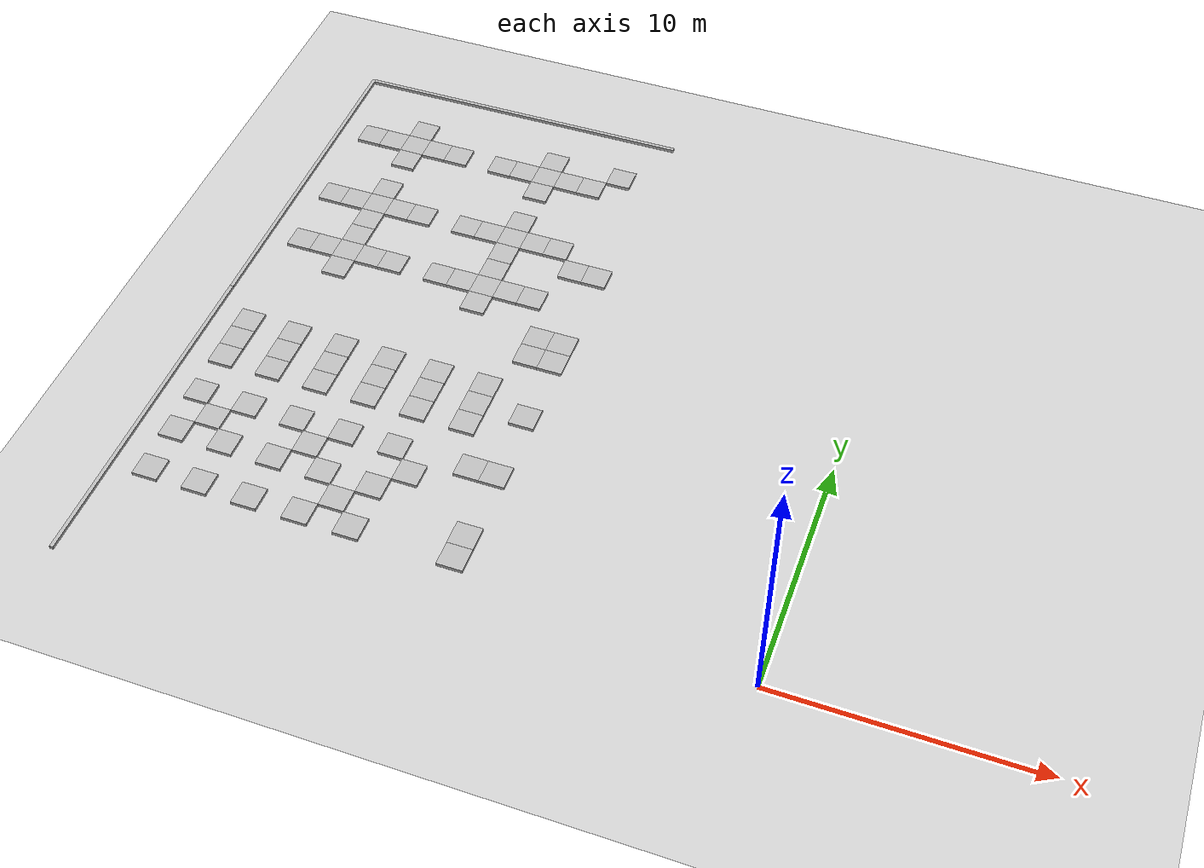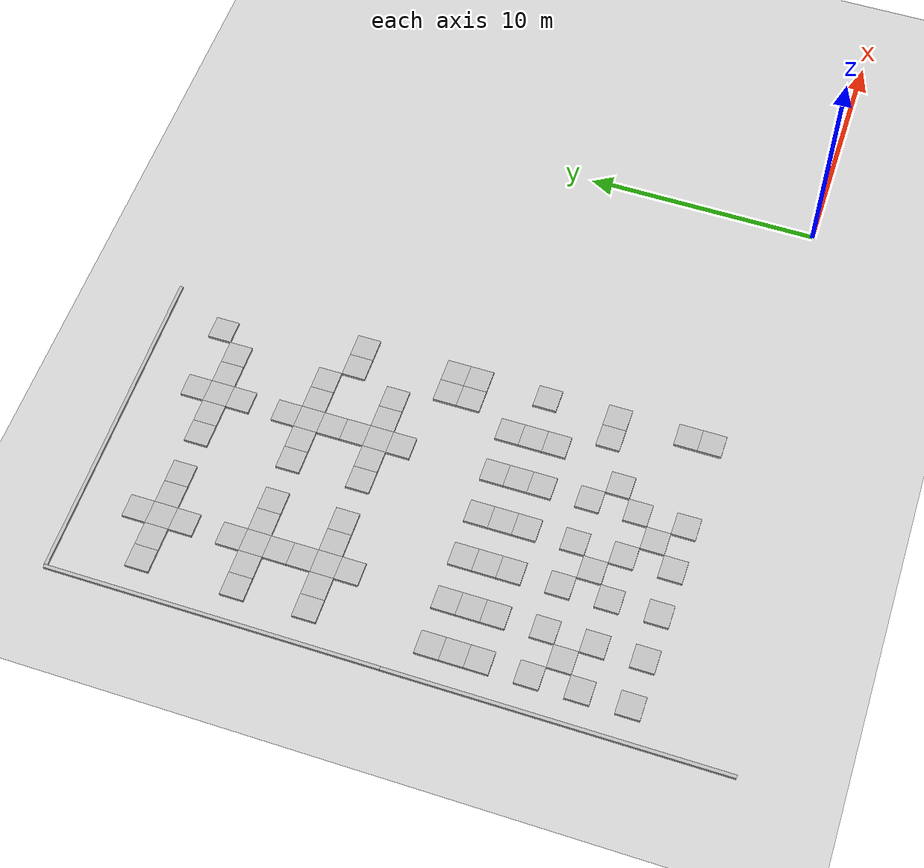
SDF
<sdf version="1.7">
 <world name="default">
  <model name="ground_plane">
   <static>1</static>
   <link name="link">
    <collision name="collision">
     <geometry><plane><normal>0 0 1</normal><size>100 100</size></plane></geometry>
     <surface>
      <contact><collide_bitmask>65535</collide_bitmask></contact>
      <friction><ode><mu>100</mu><mu2>50</mu2></ode></friction>
     </surface>
    </collision>
    <visual name="visual">
     <cast_shadows>0</cast_shadows>
     <geometry><plane><normal>0 0 1</normal><size>100 100</size></plane></geometry>
     <material>
      <script><uri>file://media/materials/scripts/gazebo.material</uri><name>Gazebo/Grey</name></script>
     </material>
    </visual>
   </link>
  </model>
  <model name="concrete_cube_1m_111">
   <static>1</static>
   <link name="link">
    <collision name="concrete_cube_1m">
     <pose>-0 0 0.3 0 -0 0</pose>
     <geometry><box><size>1 1 0.6</size></box></geometry>
    </collision>
    <visual name="concrete_cube_1m_visual">
     <geometry><mesh><uri>model://concrete_cube_1m/meshes/concrete_cube_1m.dae</uri></mesh></geometry>
    </visual>
   </link>
   <pose>-14.5 14.5 0 0 -0 0</pose>
  </model>
  <model name="concrete_cube_1m_112">
   <static>1</static>
   <link name="link">
    <collision name="concrete_cube_1m">
     <pose>-0 0 0.3 0 -0 0</pose>
     <geometry><box><size>1 1 0.6</size></box></geometry>
    </collision>
    <visual name="concrete_cube_1m_visual">
     <geometry><mesh><uri>model://concrete_cube_1m/meshes/concrete_cube_1m.dae</uri></mesh></geometry>
    </visual>
   </link>
   <pose>-13.5 14.5 0 0 -0 0</pose>
  </model>
  <model name="concrete_cube_1m_153">
   <static>1</static>
   <link name="link">
    <collision name="concrete_cube_1m">
     <pose>-0 0 0.3 0 -0 0</pose>
     <geometry><box><size>1 1 0.6</size></box></geometry>
    </collision>
    <visual name="concrete_cube_1m_visual">
     <geometry><mesh><uri>model://concrete_cube_1m/meshes/concrete_cube_1m.dae</uri></mesh></geometry>
    </visual>
   </link>
   <pose>-11.5 1.5 0 0 -0 0</pose>
  </model>
  <model name="concrete_cube_1m_154">
   <static>1</static>
   <link name="link">
    <collision name="concrete_cube_1m">
     <pose>-0 0 0.3 0 -0 0</pose>
     <geometry><box><size>1 1 0.6</size></box></geometry>
    </collision>
    <visual name="concrete_cube_1m_visual">
     <geometry><mesh><uri>model://concrete_cube_1m/meshes/concrete_cube_1m.dae</uri></mesh></geometry>
    </visual>
   </link>
   <pose>-11.5 2.5 0 0 -0 0</pose>
  </model>
  <model name="concrete_cube_1m_155">
   <static>1</static>
   <link name="link">
    <collision name="concrete_cube_1m">
     <pose>-0 0 0.3 0 -0 0</pose>
     <geometry><box><size>1 1 0.6</size></box></geometry>
    </collision>
    <visual name="concrete_cube_1m_visual">
     <geometry><mesh><uri>model://concrete_cube_1m/meshes/concrete_cube_1m.dae</uri></mesh></geometry>
    </visual>
   </link>
   <pose>-11.5 5.5 0 0 -0 0</pose>
  </model>
  <model name="concrete_cube_1m_159">
   <static>1</static>
   <link name="link">
    <collision name="concrete_cube_1m">
     <pose>-0 0 0.3 0 -0 0</pose>
     <geometry><box><size>1 1 0.6</size></box></geometry>
    </collision>
    <visual name="concrete_cube_1m_visual">
     <geometry><mesh><uri>model://concrete_cube_1m/meshes/concrete_cube_1m.dae</uri></mesh></geometry>
    </visual>
   </link>
   <pose>-11.5 8.5 0 0 -0 0</pose>
  </model>
  <model name="concrete_cube_1m_169">
   <static>1</static>
   <link name="link">
    <collision name="concrete_cube_1m">
     <pose>-0 0 0.3 0 -0 0</pose>
     <geometry><box><size>1 1 0.6</size></box></geometry>
    </collision>
    <visual name="concrete_cube_1m_visual">
     <geometry><mesh><uri>model://concrete_cube_1m/meshes/concrete_cube_1m.dae</uri></mesh></geometry>
    </visual>
   </link>
   <pose>-12.5 5.5 0 0 -0 0</pose>
  </model>
  <model name="concrete_cube_1m_170">
   <static>1</static>
   <link name="link">
    <collision name="concrete_cube_1m">
     <pose>-0 0 0.3 0 -0 0</pose>
     <geometry><box><size>1 1 0.6</size></box></geometry>
    </collision>
    <visual name="concrete_cube_1m_visual">
     <geometry><mesh><uri>model://concrete_cube_1m/meshes/concrete_cube_1m.dae</uri></mesh></geometry>
    </visual>
   </link>
   <pose>-11.5 11.5 0 0 -0 0</pose>
  </model>
  <model name="concrete_cube_1m_171">
   <static>1</static>
   <link name="link">
    <collision name="concrete_cube_1m">
     <pose>-0 0 0.3 0 -0 0</pose>
     <geometry><box><size>1 1 0.6</size></box></geometry>
    </collision>
    <visual name="concrete_cube_1m_visual">
     <geometry><mesh><uri>model://concrete_cube_1m/meshes/concrete_cube_1m.dae</uri></mesh></geometry>
    </visual>
   </link>
   <pose>-11.5 12.5 0 0 -0 0</pose>
  </model>
  <model name="concrete_cube_1m_172">
   <static>1</static>
   <link name="link">
    <collision name="concrete_cube_1m">
     <pose>-0 0 0.3 0 -0 0</pose>
     <geometry><box><size>1 1 0.6</size></box></geometry>
    </collision>
    <visual name="concrete_cube_1m_visual">
     <geometry><mesh><uri>model://concrete_cube_1m/meshes/concrete_cube_1m.dae</uri></mesh></geometry>
    </visual>
   </link>
   <pose>-12.5 11.5 0 0 -0 0</pose>
  </model>
  <model name="concrete_cube_1m_173">
   <static>1</static>
   <link name="link">
    <collision name="concrete_cube_1m">
     <pose>-0 0 0.3 0 -0 0</pose>
     <geometry><box><size>1 1 0.6</size></box></geometry>
    </collision>
    <visual name="concrete_cube_1m_visual">
     <geometry><mesh><uri>model://concrete_cube_1m/meshes/concrete_cube_1m.dae</uri></mesh></geometry>
    </visual>
   </link>
   <pose>-12.5 12.5 0 0 -0 0</pose>
  </model>
  <model name="concrete_cube_1m_174">
   <static>1</static>
   <link name="link">
    <collision name="concrete_cube_1m">
     <pose>-0 0 0.3 0 -0 0</pose>
     <geometry><box><size>1 1 0.6</size></box></geometry>
    </collision>
    <visual name="concrete_cube_1m_visual">
     <geometry><mesh><uri>model://concrete_cube_1m/meshes/concrete_cube_1m.dae</uri></mesh></geometry>
    </visual>
   </link>
   <pose>-13.5 7.5 0 0 -0 0</pose>
  </model>
  <model name="concrete_cube_1m_175">
   <static>1</static>
   <link name="link">
    <collision name="concrete_cube_1m">
     <pose>-0 0 0.3 0 -0 0</pose>
     <geometry><box><size>1 1 0.6</size></box></geometry>
    </collision>
    <visual name="concrete_cube_1m_visual">
     <geometry><mesh><uri>model://concrete_cube_1m/meshes/concrete_cube_1m.dae</uri></mesh></geometry>
    </visual>
   </link>
   <pose>-13.5 8.5 0 0 -0 0</pose>
  </model>
  <model name="concrete_cube_1m_176">
   <static>1</static>
   <link name="link">
    <collision name="concrete_cube_1m">
     <pose>-0 0 0.3 0 -0 0</pose>
     <geometry><box><size>1 1 0.6</size></box></geometry>
    </collision>
    <visual name="concrete_cube_1m_visual">
     <geometry><mesh><uri>model://concrete_cube_1m/meshes/concrete_cube_1m.dae</uri></mesh></geometry>
    </visual>
   </link>
   <pose>-13.5 9.5 0 0 -0 0</pose>
  </model>
  <model name="concrete_barrier_14m_8">
   <static>1</static>
   <link name="link">
    <collision name="concrete_barrier_14m_01">
     <pose>-0 0 0.3 0 -0 0</pose>
     <geometry><box><size>14 0.15 0.6</size></box></geometry>
    </collision>
    <visual name="concrete_barrier_14m_visual">
     <geometry><mesh><uri>model://concrete_barrier_14m/meshes/concrete_barrier_14m.dae</uri></mesh></geometry>
    </visual>
   </link>
   <pose>-25 4 0 0 -0 0</pose>
  </model>
  <model name="concrete_barrier_14m_10">
   <static>1</static>
   <link name="link">
    <collision name="concrete_barrier_14m_01">
     <pose>-0 0 0.3 0 -0 0</pose>
     <geometry><box><size>14 0.15 0.6</size></box></geometry>
    </collision>
    <visual name="concrete_barrier_14m_visual">
     <geometry><mesh><uri>model://concrete_barrier_14m/meshes/concrete_barrier_14m.dae</uri></mesh></geometry>
    </visual>
   </link>
   <pose>-25 18 0 0 -0 0</pose>
  </model>
  <model name="concrete_cube_1m_318">
   <static>1</static>
   <link name="link">
    <collision name="concrete_cube_1m">
     <pose>-0 0 0.3 0 -0 0</pose>
     <geometry><box><size>1 1 0.6</size></box></geometry>
    </collision>
    <visual name="concrete_cube_1m_visual">
     <geometry><mesh><uri>model://concrete_cube_1m/meshes/concrete_cube_1m.dae</uri></mesh></geometry>
    </visual>
   </link>
   <pose>-11.5 16.5 0 0 -0 0</pose>
  </model>
  <model name="concrete_cube_1m_319">
   <static>1</static>
   <link name="link">
    <collision name="concrete_cube_1m">
     <pose>-0 0 0.3 0 -0 0</pose>
     <geometry><box><size>1 1 0.6</size></box></geometry>
    </collision>
    <visual name="concrete_cube_1m_visual">
     <geometry><mesh><uri>model://concrete_cube_1m/meshes/concrete_cube_1m.dae</uri></mesh></geometry>
    </visual>
   </link>
   <pose>-12.5 16.5 0 0 -0 0</pose>
  </model>
  <model name="concrete_cube_1m_320">
   <static>1</static>
   <link name="link">
    <collision name="concrete_cube_1m">
     <pose>-0 0 0.3 0 -0 0</pose>
     <geometry><box><size>1 1 0.6</size></box></geometry>
    </collision>
    <visual name="concrete_cube_1m_visual">
     <geometry><mesh><uri>model://concrete_cube_1m/meshes/concrete_cube_1m.dae</uri></mesh></geometry>
    </visual>
   </link>
   <pose>-15.5 7.5 0 0 -0 0</pose>
  </model>
  <model name="concrete_cube_1m_321">
   <static>1</static>
   <link name="link">
    <collision name="concrete_cube_1m">
     <pose>-0 0 0.3 0 -0 0</pose>
     <geometry><box><size>1 1 0.6</size></box></geometry>
    </collision>
    <visual name="concrete_cube_1m_visual">
     <geometry><mesh><uri>model://concrete_cube_1m/meshes/concrete_cube_1m.dae</uri></mesh></geometry>
    </visual>
   </link>
   <pose>-15.5 8.5 0 0 -0 0</pose>
  </model>
  <model name="concrete_cube_1m_322">
   <static>1</static>
   <link name="link">
    <collision name="concrete_cube_1m">
     <pose>-0 0 0.3 0 -0 0</pose>
     <geometry><box><size>1 1 0.6</size></box></geometry>
    </collision>
    <visual name="concrete_cube_1m_visual">
     <geometry><mesh><uri>model://concrete_cube_1m/meshes/concrete_cube_1m.dae</uri></mesh></geometry>
    </visual>
   </link>
   <pose>-15.5 9.5 0 0 -0 0</pose>
  </model>
  <model name="concrete_cube_1m_323">
   <static>1</static>
   <link name="link">
    <collision name="concrete_cube_1m">
     <pose>-0 0 0.3 0 -0 0</pose>
     <geometry><box><size>1 1 0.6</size></box></geometry>
    </collision>
    <visual name="concrete_cube_1m_visual">
     <geometry><mesh><uri>model://concrete_cube_1m/meshes/concrete_cube_1m.dae</uri></mesh></geometry>
    </visual>
   </link>
   <pose>-17.5 7.5 0 0 -0 0</pose>
  </model>
  <model name="concrete_cube_1m_324">
   <static>1</static>
   <link name="link">
    <collision name="concrete_cube_1m">
     <pose>-0 0 0.3 0 -0 0</pose>
     <geometry><box><size>1 1 0.6</size></box></geometry>
    </collision>
    <visual name="concrete_cube_1m_visual">
     <geometry><mesh><uri>model://concrete_cube_1m/meshes/concrete_cube_1m.dae</uri></mesh></geometry>
    </visual>
   </link>
   <pose>-17.5 8.5 0 0 -0 0</pose>
  </model>
  <model name="concrete_cube_1m_325">
   <static>1</static>
   <link name="link">
    <collision name="concrete_cube_1m">
     <pose>-0 0 0.3 0 -0 0</pose>
     <geometry><box><size>1 1 0.6</size></box></geometry>
    </collision>
    <visual name="concrete_cube_1m_visual">
     <geometry><mesh><uri>model://concrete_cube_1m/meshes/concrete_cube_1m.dae</uri></mesh></geometry>
    </visual>
   </link>
   <pose>-17.5 9.5 0 0 -0 0</pose>
  </model>
  <model name="concrete_cube_1m_326">
   <static>1</static>
   <link name="link">
    <collision name="concrete_cube_1m">
     <pose>-0 0 0.3 0 -0 0</pose>
     <geometry><box><size>1 1 0.6</size></box></geometry>
    </collision>
    <visual name="concrete_cube_1m_visual">
     <geometry><mesh><uri>model://concrete_cube_1m/meshes/concrete_cube_1m.dae</uri></mesh></geometry>
    </visual>
   </link>
   <pose>-15.5 14.5 0 0 -0 0</pose>
  </model>
  <model name="concrete_cube_1m_327">
   <static>1</static>
   <link name="link">
    <collision name="concrete_cube_1m">
     <pose>-0 0 0.3 0 -0 0</pose>
     <geometry><box><size>1 1 0.6</size></box></geometry>
    </collision>
    <visual name="concrete_cube_1m_visual">
     <geometry><mesh><uri>model://concrete_cube_1m/meshes/concrete_cube_1m.dae</uri></mesh></geometry>
    </visual>
   </link>
   <pose>-16.5 14.5 0 0 -0 0</pose>
  </model>
  <model name="concrete_cube_1m_328">
   <static>1</static>
   <link name="link">
    <collision name="concrete_cube_1m">
     <pose>-0 0 0.3 0 -0 0</pose>
     <geometry><box><size>1 1 0.6</size></box></geometry>
    </collision>
    <visual name="concrete_cube_1m_visual">
     <geometry><mesh><uri>model://concrete_cube_1m/meshes/concrete_cube_1m.dae</uri></mesh></geometry>
    </visual>
   </link>
   <pose>-17.5 14.5 0 0 -0 0</pose>
  </model>
  <model name="concrete_cube_1m_329">
   <static>1</static>
   <link name="link">
    <collision name="concrete_cube_1m">
     <pose>-0 0 0.3 0 -0 0</pose>
     <geometry><box><size>1 1 0.6</size></box></geometry>
    </collision>
    <visual name="concrete_cube_1m_visual">
     <geometry><mesh><uri>model://concrete_cube_1m/meshes/concrete_cube_1m.dae</uri></mesh></geometry>
    </visual>
   </link>
   <pose>-13.5 17.5 0 0 -0 0</pose>
  </model>
  <model name="concrete_cube_1m_330">
   <static>1</static>
   <link name="link">
    <collision name="concrete_cube_1m">
     <pose>-0 0 0.3 0 -0 0</pose>
     <geometry><box><size>1 1 0.6</size></box></geometry>
    </collision>
    <visual name="concrete_cube_1m_visual">
     <geometry><mesh><uri>model://concrete_cube_1m/meshes/concrete_cube_1m.dae</uri></mesh></geometry>
    </visual>
   </link>
   <pose>-14.5 17.5 0 0 -0 0</pose>
  </model>
  <model name="concrete_cube_1m_331">
   <static>1</static>
   <link name="link">
    <collision name="concrete_cube_1m">
     <pose>-0 0 0.3 0 -0 0</pose>
     <geometry><box><size>1 1 0.6</size></box></geometry>
    </collision>
    <visual name="concrete_cube_1m_visual">
     <geometry><mesh><uri>model://concrete_cube_1m/meshes/concrete_cube_1m.dae</uri></mesh></geometry>
    </visual>
   </link>
   <pose>-15.5 17.5 0 0 -0 0</pose>
  </model>
  <model name="concrete_cube_1m_332">
   <static>1</static>
   <link name="link">
    <collision name="concrete_cube_1m">
     <pose>-0 0 0.3 0 -0 0</pose>
     <geometry><box><size>1 1 0.6</size></box></geometry>
    </collision>
    <visual name="concrete_cube_1m_visual">
     <geometry><mesh><uri>model://concrete_cube_1m/meshes/concrete_cube_1m.dae</uri></mesh></geometry>
    </visual>
   </link>
   <pose>-16.5 17.5 0 0 -0 0</pose>
  </model>
  <model name="concrete_cube_1m_333">
   <static>1</static>
   <link name="link">
    <collision name="concrete_cube_1m">
     <pose>-0 0 0.3 0 -0 0</pose>
     <geometry><box><size>1 1 0.6</size></box></geometry>
    </collision>
    <visual name="concrete_cube_1m_visual">
     <geometry><mesh><uri>model://concrete_cube_1m/meshes/concrete_cube_1m.dae</uri></mesh></geometry>
    </visual>
   </link>
   <pose>-17.5 17.5 0 0 -0 0</pose>
  </model>
  <model name="concrete_cube_1m_334">
   <static>1</static>
   <link name="link">
    <collision name="concrete_cube_1m">
     <pose>-0 0 0.3 0 -0 0</pose>
     <geometry><box><size>1 1 0.6</size></box></geometry>
    </collision>
    <visual name="concrete_cube_1m_visual">
     <geometry><mesh><uri>model://concrete_cube_1m/meshes/concrete_cube_1m.dae</uri></mesh></geometry>
    </visual>
   </link>
   <pose>-15.5 15.5 0 0 -0 0</pose>
  </model>
  <model name="concrete_cube_1m_335">
   <static>1</static>
   <link name="link">
    <collision name="concrete_cube_1m">
     <pose>-0 0 0.3 0 -0 0</pose>
     <geometry><box><size>1 1 0.6</size></box></geometry>
    </collision>
    <visual name="concrete_cube_1m_visual">
     <geometry><mesh><uri>model://concrete_cube_1m/meshes/concrete_cube_1m.dae</uri></mesh></geometry>
    </visual>
   </link>
   <pose>-15.5 16.5 0 0 -0 0</pose>
  </model>
  <model name="concrete_cube_1m_336">
   <static>1</static>
   <link name="link">
    <collision name="concrete_cube_1m">
     <pose>-0 0 0.3 0 -0 0</pose>
     <geometry><box><size>1 1 0.6</size></box></geometry>
    </collision>
    <visual name="concrete_cube_1m_visual">
     <geometry><mesh><uri>model://concrete_cube_1m/meshes/concrete_cube_1m.dae</uri></mesh></geometry>
    </visual>
   </link>
   <pose>-15.5 18.5 0 0 -0 0</pose>
  </model>
  <model name="concrete_cube_1m_337">
   <static>1</static>
   <link name="link">
    <collision name="concrete_cube_1m">
     <pose>-0 0 0.3 0 -0 0</pose>
     <geometry><box><size>1 1 0.6</size></box></geometry>
    </collision>
    <visual name="concrete_cube_1m_visual">
     <geometry><mesh><uri>model://concrete_cube_1m/meshes/concrete_cube_1m.dae</uri></mesh></geometry>
    </visual>
   </link>
   <pose>-15.5 13.5 0 0 -0 0</pose>
  </model>
  <model name="concrete_cube_1m_338">
   <static>1</static>
   <link name="link">
    <collision name="concrete_cube_1m">
     <pose>-0 0 0.3 0 -0 0</pose>
     <geometry><box><size>1 1 0.6</size></box></geometry>
    </collision>
    <visual name="concrete_cube_1m_visual">
     <geometry><mesh><uri>model://concrete_cube_1m/meshes/concrete_cube_1m.dae</uri></mesh></geometry>
    </visual>
   </link>
   <pose>-15.5 1.5 0 0 -0 0</pose>
  </model>
  <model name="concrete_cube_1m_339">
   <static>1</static>
   <link name="link">
    <collision name="concrete_cube_1m">
     <pose>-0 0 0.3 0 -0 0</pose>
     <geometry><box><size>1 1 0.6</size></box></geometry>
    </collision>
    <visual name="concrete_cube_1m_visual">
     <geometry><mesh><uri>model://concrete_cube_1m/meshes/concrete_cube_1m.dae</uri></mesh></geometry>
    </visual>
   </link>
   <pose>-16.5 2.5 0 0 -0 0</pose>
  </model>
  <model name="concrete_cube_1m_340">
   <static>1</static>
   <link name="link">
    <collision name="concrete_cube_1m">
     <pose>-0 0 0.3 0 -0 0</pose>
     <geometry><box><size>1 1 0.6</size></box></geometry>
    </collision>
    <visual name="concrete_cube_1m_visual">
     <geometry><mesh><uri>model://concrete_cube_1m/meshes/concrete_cube_1m.dae</uri></mesh></geometry>
    </visual>
   </link>
   <pose>-17.5 3.5 0 0 -0 0</pose>
  </model>
  <model name="concrete_cube_1m_341">
   <static>1</static>
   <link name="link">
    <collision name="concrete_cube_1m">
     <pose>-0 0 0.3 0 -0 0</pose>
     <geometry><box><size>1 1 0.6</size></box></geometry>
    </collision>
    <visual name="concrete_cube_1m_visual">
     <geometry><mesh><uri>model://concrete_cube_1m/meshes/concrete_cube_1m.dae</uri></mesh></geometry>
    </visual>
   </link>
   <pose>-18.5 4.5 0 0 -0 0</pose>
  </model>
  <model name="concrete_cube_1m_342">
   <static>1</static>
   <link name="link">
    <collision name="concrete_cube_1m">
     <pose>-0 0 0.3 0 -0 0</pose>
     <geometry><box><size>1 1 0.6</size></box></geometry>
    </collision>
    <visual name="concrete_cube_1m_visual">
     <geometry><mesh><uri>model://concrete_cube_1m/meshes/concrete_cube_1m.dae</uri></mesh></geometry>
    </visual>
   </link>
   <pose>-15.5 3.5 0 0 -0 0</pose>
  </model>
  <model name="concrete_cube_1m_343">
   <static>1</static>
   <link name="link">
    <collision name="concrete_cube_1m">
     <pose>-0 0 0.3 0 -0 0</pose>
     <geometry><box><size>1 1 0.6</size></box></geometry>
    </collision>
    <visual name="concrete_cube_1m_visual">
     <geometry><mesh><uri>model://concrete_cube_1m/meshes/concrete_cube_1m.dae</uri></mesh></geometry>
    </visual>
   </link>
   <pose>-14.5 4.5 0 0 -0 0</pose>
  </model>
  <model name="concrete_cube_1m_344">
   <static>1</static>
   <link name="link">
    <collision name="concrete_cube_1m">
     <pose>-0 0 0.3 0 -0 0</pose>
     <geometry><box><size>1 1 0.6</size></box></geometry>
    </collision>
    <visual name="concrete_cube_1m_visual">
     <geometry><mesh><uri>model://concrete_cube_1m/meshes/concrete_cube_1m.dae</uri></mesh></geometry>
    </visual>
   </link>
   <pose>-17.5 1.5 0 0 -0 0</pose>
  </model>
  <model name="concrete_cube_1m_346">
   <static>1</static>
   <link name="link">
    <collision name="concrete_cube_1m">
     <pose>-0 0 0.3 0 -0 0</pose>
     <geometry><box><size>1 1 0.6</size></box></geometry>
    </collision>
    <visual name="concrete_cube_1m_visual">
     <geometry><mesh><uri>model://concrete_cube_1m/meshes/concrete_cube_1m.dae</uri></mesh></geometry>
    </visual>
   </link>
   <pose>-19.5 7.5 0 0 -0 0</pose>
  </model>
  <model name="concrete_cube_1m_347">
   <static>1</static>
   <link name="link">
    <collision name="concrete_cube_1m">
     <pose>-0 0 0.3 0 -0 0</pose>
     <geometry><box><size>1 1 0.6</size></box></geometry>
    </collision>
    <visual name="concrete_cube_1m_visual">
     <geometry><mesh><uri>model://concrete_cube_1m/meshes/concrete_cube_1m.dae</uri></mesh></geometry>
    </visual>
   </link>
   <pose>-19.5 8.5 0 0 -0 0</pose>
  </model>
  <model name="concrete_cube_1m_348">
   <static>1</static>
   <link name="link">
    <collision name="concrete_cube_1m">
     <pose>-0 0 0.3 0 -0 0</pose>
     <geometry><box><size>1 1 0.6</size></box></geometry>
    </collision>
    <visual name="concrete_cube_1m_visual">
     <geometry><mesh><uri>model://concrete_cube_1m/meshes/concrete_cube_1m.dae</uri></mesh></geometry>
    </visual>
   </link>
   <pose>-19.5 9.5 0 0 -0 0</pose>
  </model>
  <model name="concrete_cube_1m_376">
   <static>1</static>
   <link name="link">
    <collision name="concrete_cube_1m">
     <pose>-0 0 0.3 0 -0 0</pose>
     <geometry><box><size>1 1 0.6</size></box></geometry>
    </collision>
    <visual name="concrete_cube_1m_visual">
     <geometry><mesh><uri>model://concrete_cube_1m/meshes/concrete_cube_1m.dae</uri></mesh></geometry>
    </visual>
   </link>
   <pose>-15.5 5.5 0 0 -0 0</pose>
  </model>
  <model name="concrete_cube_1m_377">
   <static>1</static>
   <link name="link">
    <collision name="concrete_cube_1m">
     <pose>-0 0 0.3 0 -0 0</pose>
     <geometry><box><size>1 1 0.6</size></box></geometry>
    </collision>
    <visual name="concrete_cube_1m_visual">
     <geometry><mesh><uri>model://concrete_cube_1m/meshes/concrete_cube_1m.dae</uri></mesh></geometry>
    </visual>
   </link>
   <pose>-17.5 5.5 0 0 -0 0</pose>
  </model>
  <model name="concrete_barrier_14m_2_clone">
   <static>1</static>
   <link name="link">
    <collision name="concrete_barrier_14m_01">
     <pose>-0 0 0.3 0 -0 0</pose>
     <geometry><box><size>14 0.15 0.6</size></box></geometry>
    </collision>
    <visual name="concrete_barrier_14m_visual">
     <geometry><mesh><uri>model://concrete_barrier_14m/meshes/concrete_barrier_14m.dae</uri></mesh></geometry>
    </visual>
   </link>
   <pose>-18 25 0 0 -0 1.57802</pose>
  </model>
  <model name="concrete_cube_1m_478">
   <static>1</static>
   <link name="link">
    <collision name="concrete_cube_1m">
     <pose>-0 0 0.3 0 -0 0</pose>
     <geometry><box><size>1 1 0.6</size></box></geometry>
    </collision>
    <visual name="concrete_cube_1m_visual">
     <geometry><mesh><uri>model://concrete_cube_1m/meshes/concrete_cube_1m.dae</uri></mesh></geometry>
    </visual>
   </link>
   <pose>-21.5 8.5 0 0 -0 0</pose>
  </model>
  <model name="concrete_cube_1m_479">
   <static>1</static>
   <link name="link">
    <collision name="concrete_cube_1m">
     <pose>-0 0 0.3 0 -0 0</pose>
     <geometry><box><size>1 1 0.6</size></box></geometry>
    </collision>
    <visual name="concrete_cube_1m_visual">
     <geometry><mesh><uri>model://concrete_cube_1m/meshes/concrete_cube_1m.dae</uri></mesh></geometry>
    </visual>
   </link>
   <pose>-21.5 7.5 0 0 -0 0</pose>
  </model>
  <model name="concrete_cube_1m_480">
   <static>1</static>
   <link name="link">
    <collision name="concrete_cube_1m">
     <pose>-0 0 0.3 0 -0 0</pose>
     <geometry><box><size>1 1 0.6</size></box></geometry>
    </collision>
    <visual name="concrete_cube_1m_visual">
     <geometry><mesh><uri>model://concrete_cube_1m/meshes/concrete_cube_1m.dae</uri></mesh></geometry>
    </visual>
   </link>
   <pose>-21.5 9.5 0 0 -0 0</pose>
  </model>
  <model name="concrete_cube_1m_481">
   <static>1</static>
   <link name="link">
    <collision name="concrete_cube_1m">
     <pose>-0 0 0.3 0 -0 0</pose>
     <geometry><box><size>1 1 0.6</size></box></geometry>
    </collision>
    <visual name="concrete_cube_1m_visual">
     <geometry><mesh><uri>model://concrete_cube_1m/meshes/concrete_cube_1m.dae</uri></mesh></geometry>
    </visual>
   </link>
   <pose>-23.5 7.5 0 0 -0 0</pose>
  </model>
  <model name="concrete_cube_1m_482">
   <static>1</static>
   <link name="link">
    <collision name="concrete_cube_1m">
     <pose>-0 0 0.3 0 -0 0</pose>
     <geometry><box><size>1 1 0.6</size></box></geometry>
    </collision>
    <visual name="concrete_cube_1m_visual">
     <geometry><mesh><uri>model://concrete_cube_1m/meshes/concrete_cube_1m.dae</uri></mesh></geometry>
    </visual>
   </link>
   <pose>-23.5 8.5 0 0 -0 0</pose>
  </model>
  <model name="concrete_cube_1m_483">
   <static>1</static>
   <link name="link">
    <collision name="concrete_cube_1m">
     <pose>-0 0 0.3 0 -0 0</pose>
     <geometry><box><size>1 1 0.6</size></box></geometry>
    </collision>
    <visual name="concrete_cube_1m_visual">
     <geometry><mesh><uri>model://concrete_cube_1m/meshes/concrete_cube_1m.dae</uri></mesh></geometry>
    </visual>
   </link>
   <pose>-23.5 9.5 0 0 -0 0</pose>
  </model>
  <model name="concrete_cube_1m_484">
   <static>1</static>
   <link name="link">
    <collision name="concrete_cube_1m">
     <pose>-0 0 0.3 0 -0 0</pose>
     <geometry><box><size>1 1 0.6</size></box></geometry>
    </collision>
    <visual name="concrete_cube_1m_visual">
     <geometry><mesh><uri>model://concrete_cube_1m/meshes/concrete_cube_1m.dae</uri></mesh></geometry>
    </visual>
   </link>
   <pose>-19.5 5.5 0 0 -0 0</pose>
  </model>
  <model name="concrete_cube_1m_485">
   <static>1</static>
   <link name="link">
    <collision name="concrete_cube_1m">
     <pose>-0 0 0.3 0 -0 0</pose>
     <geometry><box><size>1 1 0.6</size></box></geometry>
    </collision>
    <visual name="concrete_cube_1m_visual">
     <geometry><mesh><uri>model://concrete_cube_1m/meshes/concrete_cube_1m.dae</uri></mesh></geometry>
    </visual>
   </link>
   <pose>-19.5 3.5 0 0 -0 0</pose>
  </model>
  <model name="concrete_cube_1m_486">
   <static>1</static>
   <link name="link">
    <collision name="concrete_cube_1m">
     <pose>-0 0 0.3 0 -0 0</pose>
     <geometry><box><size>1 1 0.6</size></box></geometry>
    </collision>
    <visual name="concrete_cube_1m_visual">
     <geometry><mesh><uri>model://concrete_cube_1m/meshes/concrete_cube_1m.dae</uri></mesh></geometry>
    </visual>
   </link>
   <pose>-21.5 5.5 0 0 -0 0</pose>
  </model>
  <model name="concrete_cube_1m_487">
   <static>1</static>
   <link name="link">
    <collision name="concrete_cube_1m">
     <pose>-0 0 0.3 0 -0 0</pose>
     <geometry><box><size>1 1 0.6</size></box></geometry>
    </collision>
    <visual name="concrete_cube_1m_visual">
     <geometry><mesh><uri>model://concrete_cube_1m/meshes/concrete_cube_1m.dae</uri></mesh></geometry>
    </visual>
   </link>
   <pose>-22.5 4.5 0 0 -0 0</pose>
  </model>
  <model name="concrete_cube_1m_488">
   <static>1</static>
   <link name="link">
    <collision name="concrete_cube_1m">
     <pose>-0 0 0.3 0 -0 0</pose>
     <geometry><box><size>1 1 0.6</size></box></geometry>
    </collision>
    <visual name="concrete_cube_1m_visual">
     <geometry><mesh><uri>model://concrete_cube_1m/meshes/concrete_cube_1m.dae</uri></mesh></geometry>
    </visual>
   </link>
   <pose>-21.5 3.5 0 0 -0 0</pose>
  </model>
  <model name="concrete_cube_1m_489">
   <static>1</static>
   <link name="link">
    <collision name="concrete_cube_1m">
     <pose>-0 0 0.3 0 -0 0</pose>
     <geometry><box><size>1 1 0.6</size></box></geometry>
    </collision>
    <visual name="concrete_cube_1m_visual">
     <geometry><mesh><uri>model://concrete_cube_1m/meshes/concrete_cube_1m.dae</uri></mesh></geometry>
    </visual>
   </link>
   <pose>-23.5 5.5 0 0 -0 0</pose>
  </model>
  <model name="concrete_cube_1m_490">
   <static>1</static>
   <link name="link">
    <collision name="concrete_cube_1m">
     <pose>-0 0 0.3 0 -0 0</pose>
     <geometry><box><size>1 1 0.6</size></box></geometry>
    </collision>
    <visual name="concrete_cube_1m_visual">
     <geometry><mesh><uri>model://concrete_cube_1m/meshes/concrete_cube_1m.dae</uri></mesh></geometry>
    </visual>
   </link>
   <pose>-23.5 3.5 0 0 -0 0</pose>
  </model>
  <model name="concrete_cube_1m_491">
   <static>1</static>
   <link name="link">
    <collision name="concrete_cube_1m">
     <pose>-0 0 0.3 0 -0 0</pose>
     <geometry><box><size>1 1 0.6</size></box></geometry>
    </collision>
    <visual name="concrete_cube_1m_visual">
     <geometry><mesh><uri>model://concrete_cube_1m/meshes/concrete_cube_1m.dae</uri></mesh></geometry>
    </visual>
   </link>
   <pose>-19.5 1.5 0 0 -0 0</pose>
  </model>
  <model name="concrete_cube_1m_493">
   <static>1</static>
   <link name="link">
    <collision name="concrete_cube_1m">
     <pose>-0 0 0.3 0 -0 0</pose>
     <geometry><box><size>1 1 0.6</size></box></geometry>
    </collision>
    <visual name="concrete_cube_1m_visual">
     <geometry><mesh><uri>model://concrete_cube_1m/meshes/concrete_cube_1m.dae</uri></mesh></geometry>
    </visual>
   </link>
   <pose>-21.5 1.5 0 0 -0 0</pose>
  </model>
  <model name="concrete_cube_1m_497">
   <static>1</static>
   <link name="link">
    <collision name="concrete_cube_1m">
     <pose>-0 0 0.3 0 -0 0</pose>
     <geometry><box><size>1 1 0.6</size></box></geometry>
    </collision>
    <visual name="concrete_cube_1m_visual">
     <geometry><mesh><uri>model://concrete_cube_1m/meshes/concrete_cube_1m.dae</uri></mesh></geometry>
    </visual>
   </link>
   <pose>-23.5 1.5 0 0 -0 0</pose>
  </model>
  <model name="concrete_cube_1m_551">
   <static>1</static>
   <link name="link">
    <collision name="concrete_cube_1m">
     <pose>-0 0 0.3 0 -0 0</pose>
     <geometry><box><size>1 1 0.6</size></box></geometry>
    </collision>
    <visual name="concrete_cube_1m_visual">
     <geometry><mesh><uri>model://concrete_cube_1m/meshes/concrete_cube_1m.dae</uri></mesh></geometry>
    </visual>
   </link>
   <pose>-19.5 14.5 0 0 -0 0</pose>
  </model>
  <model name="concrete_cube_1m_552">
   <static>1</static>
   <link name="link">
    <collision name="concrete_cube_1m">
     <pose>-0 0 0.3 0 -0 0</pose>
     <geometry><box><size>1 1 0.6</size></box></geometry>
    </collision>
    <visual name="concrete_cube_1m_visual">
     <geometry><mesh><uri>model://concrete_cube_1m/meshes/concrete_cube_1m.dae</uri></mesh></geometry>
    </visual>
   </link>
   <pose>-19.5 17.5 0 0 -0 0</pose>
  </model>
  <model name="concrete_cube_1m_553">
   <static>1</static>
   <link name="link">
    <collision name="concrete_cube_1m">
     <pose>-0 0 0.3 0 -0 0</pose>
     <geometry><box><size>1 1 0.6</size></box></geometry>
    </collision>
    <visual name="concrete_cube_1m_visual">
     <geometry><mesh><uri>model://concrete_cube_1m/meshes/concrete_cube_1m.dae</uri></mesh></geometry>
    </visual>
   </link>
   <pose>-20.5 14.5 0 0 -0 0</pose>
  </model>
  <model name="concrete_cube_1m_554">
   <static>1</static>
   <link name="link">
    <collision name="concrete_cube_1m">
     <pose>-0 0 0.3 0 -0 0</pose>
     <geometry><box><size>1 1 0.6</size></box></geometry>
    </collision>
    <visual name="concrete_cube_1m_visual">
     <geometry><mesh><uri>model://concrete_cube_1m/meshes/concrete_cube_1m.dae</uri></mesh></geometry>
    </visual>
   </link>
   <pose>-20.5 17.5 0 0 -0 0</pose>
  </model>
  <model name="concrete_cube_1m_555">
   <static>1</static>
   <link name="link">
    <collision name="concrete_cube_1m">
     <pose>-0 0 0.3 0 -0 0</pose>
     <geometry><box><size>1 1 0.6</size></box></geometry>
    </collision>
    <visual name="concrete_cube_1m_visual">
     <geometry><mesh><uri>model://concrete_cube_1m/meshes/concrete_cube_1m.dae</uri></mesh></geometry>
    </visual>
   </link>
   <pose>-21.5 14.5 0 0 -0 0</pose>
  </model>
  <model name="concrete_cube_1m_556">
   <static>1</static>
   <link name="link">
    <collision name="concrete_cube_1m">
     <pose>-0 0 0.3 0 -0 0</pose>
     <geometry><box><size>1 1 0.6</size></box></geometry>
    </collision>
    <visual name="concrete_cube_1m_visual">
     <geometry><mesh><uri>model://concrete_cube_1m/meshes/concrete_cube_1m.dae</uri></mesh></geometry>
    </visual>
   </link>
   <pose>-21.5 13.5 0 0 -0 0</pose>
  </model>
  <model name="concrete_cube_1m_557">
   <static>1</static>
   <link name="link">
    <collision name="concrete_cube_1m">
     <pose>-0 0 0.3 0 -0 0</pose>
     <geometry><box><size>1 1 0.6</size></box></geometry>
    </collision>
    <visual name="concrete_cube_1m_visual">
     <geometry><mesh><uri>model://concrete_cube_1m/meshes/concrete_cube_1m.dae</uri></mesh></geometry>
    </visual>
   </link>
   <pose>-21.5 15.5 0 0 -0 0</pose>
  </model>
  <model name="concrete_cube_1m_558">
   <static>1</static>
   <link name="link">
    <collision name="concrete_cube_1m">
     <pose>-0 0 0.3 0 -0 0</pose>
     <geometry><box><size>1 1 0.6</size></box></geometry>
    </collision>
    <visual name="concrete_cube_1m_visual">
     <geometry><mesh><uri>model://concrete_cube_1m/meshes/concrete_cube_1m.dae</uri></mesh></geometry>
    </visual>
   </link>
   <pose>-21.5 16.5 0 0 -0 0</pose>
  </model>
  <model name="concrete_cube_1m_559">
   <static>1</static>
   <link name="link">
    <collision name="concrete_cube_1m">
     <pose>-0 0 0.3 0 -0 0</pose>
     <geometry><box><size>1 1 0.6</size></box></geometry>
    </collision>
    <visual name="concrete_cube_1m_visual">
     <geometry><mesh><uri>model://concrete_cube_1m/meshes/concrete_cube_1m.dae</uri></mesh></geometry>
    </visual>
   </link>
   <pose>-21.5 17.5 0 0 -0 0</pose>
  </model>
  <model name="concrete_cube_1m_560">
   <static>1</static>
   <link name="link">
    <collision name="concrete_cube_1m">
     <pose>-0 0 0.3 0 -0 0</pose>
     <geometry><box><size>1 1 0.6</size></box></geometry>
    </collision>
    <visual name="concrete_cube_1m_visual">
     <geometry><mesh><uri>model://concrete_cube_1m/meshes/concrete_cube_1m.dae</uri></mesh></geometry>
    </visual>
   </link>
   <pose>-21.5 18.5 0 0 -0 0</pose>
  </model>
  <model name="concrete_cube_1m_561">
   <static>1</static>
   <link name="link">
    <collision name="concrete_cube_1m">
     <pose>-0 0 0.3 0 -0 0</pose>
     <geometry><box><size>1 1 0.6</size></box></geometry>
    </collision>
    <visual name="concrete_cube_1m_visual">
     <geometry><mesh><uri>model://concrete_cube_1m/meshes/concrete_cube_1m.dae</uri></mesh></geometry>
    </visual>
   </link>
   <pose>-22.5 14.5 0 0 -0 0</pose>
  </model>
  <model name="concrete_cube_1m_562">
   <static>1</static>
   <link name="link">
    <collision name="concrete_cube_1m">
     <pose>-0 0 0.3 0 -0 0</pose>
     <geometry><box><size>1 1 0.6</size></box></geometry>
    </collision>
    <visual name="concrete_cube_1m_visual">
     <geometry><mesh><uri>model://concrete_cube_1m/meshes/concrete_cube_1m.dae</uri></mesh></geometry>
    </visual>
   </link>
   <pose>-23.5 14.5 0 0 -0 0</pose>
  </model>
  <model name="concrete_cube_1m_563">
   <static>1</static>
   <link name="link">
    <collision name="concrete_cube_1m">
     <pose>-0 0 0.3 0 -0 0</pose>
     <geometry><box><size>1 1 0.6</size></box></geometry>
    </collision>
    <visual name="concrete_cube_1m_visual">
     <geometry><mesh><uri>model://concrete_cube_1m/meshes/concrete_cube_1m.dae</uri></mesh></geometry>
    </visual>
   </link>
   <pose>-22.5 17.5 0 0 -0 0</pose>
  </model>
  <model name="concrete_cube_1m_564">
   <static>1</static>
   <link name="link">
    <collision name="concrete_cube_1m">
     <pose>-0 0 0.3 0 -0 0</pose>
     <geometry><box><size>1 1 0.6</size></box></geometry>
    </collision>
    <visual name="concrete_cube_1m_visual">
     <geometry><mesh><uri>model://concrete_cube_1m/meshes/concrete_cube_1m.dae</uri></mesh></geometry>
    </visual>
   </link>
   <pose>-23.5 17.5 0 0 -0 0</pose>
  </model>
  <model name="concrete_cube_1m_565">
   <static>1</static>
   <link name="link">
    <collision name="concrete_cube_1m">
     <pose>-0 0 0.3 0 -0 0</pose>
     <geometry><box><size>1 1 0.6</size></box></geometry>
    </collision>
    <visual name="concrete_cube_1m_visual">
     <geometry><mesh><uri>model://concrete_cube_1m/meshes/concrete_cube_1m.dae</uri></mesh></geometry>
    </visual>
   </link>
   <pose>-21.5 20.5 0 0 -0 0</pose>
  </model>
  <model name="concrete_cube_1m_566">
   <static>1</static>
   <link name="link">
    <collision name="concrete_cube_1m">
     <pose>-0 0 0.3 0 -0 0</pose>
     <geometry><box><size>1 1 0.6</size></box></geometry>
    </collision>
    <visual name="concrete_cube_1m_visual">
     <geometry><mesh><uri>model://concrete_cube_1m/meshes/concrete_cube_1m.dae</uri></mesh></geometry>
    </visual>
   </link>
   <pose>-21.5 21.5 0 0 -0 0</pose>
  </model>
  <model name="concrete_cube_1m_567">
   <static>1</static>
   <link name="link">
    <collision name="concrete_cube_1m">
     <pose>-0 0 0.3 0 -0 0</pose>
     <geometry><box><size>1 1 0.6</size></box></geometry>
    </collision>
    <visual name="concrete_cube_1m_visual">
     <geometry><mesh><uri>model://concrete_cube_1m/meshes/concrete_cube_1m.dae</uri></mesh></geometry>
    </visual>
   </link>
   <pose>-20.5 21.5 0 0 -0 0</pose>
  </model>
  <model name="concrete_cube_1m_568">
   <static>1</static>
   <link name="link">
    <collision name="concrete_cube_1m">
     <pose>-0 0 0.3 0 -0 0</pose>
     <geometry><box><size>1 1 0.6</size></box></geometry>
    </collision>
    <visual name="concrete_cube_1m_visual">
     <geometry><mesh><uri>model://concrete_cube_1m/meshes/concrete_cube_1m.dae</uri></mesh></geometry>
    </visual>
   </link>
   <pose>-19.5 21.5 0 0 -0 0</pose>
  </model>
  <model name="concrete_cube_1m_569">
   <static>1</static>
   <link name="link">
    <collision name="concrete_cube_1m">
     <pose>-0 0 0.3 0 -0 0</pose>
     <geometry><box><size>1 1 0.6</size></box></geometry>
    </collision>
    <visual name="concrete_cube_1m_visual">
     <geometry><mesh><uri>model://concrete_cube_1m/meshes/concrete_cube_1m.dae</uri></mesh></geometry>
    </visual>
   </link>
   <pose>-22.5 21.5 0 0 -0 0</pose>
  </model>
  <model name="concrete_cube_1m_570">
   <static>1</static>
   <link name="link">
    <collision name="concrete_cube_1m">
     <pose>-0 0 0.3 0 -0 0</pose>
     <geometry><box><size>1 1 0.6</size></box></geometry>
    </collision>
    <visual name="concrete_cube_1m_visual">
     <geometry><mesh><uri>model://concrete_cube_1m/meshes/concrete_cube_1m.dae</uri></mesh></geometry>
    </visual>
   </link>
   <pose>-23.5 21.5 0 0 -0 0</pose>
  </model>
  <model name="concrete_cube_1m_571">
   <static>1</static>
   <link name="link">
    <collision name="concrete_cube_1m">
     <pose>-0 0 0.3 0 -0 0</pose>
     <geometry><box><size>1 1 0.6</size></box></geometry>
    </collision>
    <visual name="concrete_cube_1m_visual">
     <geometry><mesh><uri>model://concrete_cube_1m/meshes/concrete_cube_1m.dae</uri></mesh></geometry>
    </visual>
   </link>
   <pose>-21.5 22.5 0 0 -0 0</pose>
  </model>
  <model name="concrete_cube_1m_572">
   <static>1</static>
   <link name="link">
    <collision name="concrete_cube_1m">
     <pose>-0 0 0.3 0 -0 0</pose>
     <geometry><box><size>1 1 0.6</size></box></geometry>
    </collision>
    <visual name="concrete_cube_1m_visual">
     <geometry><mesh><uri>model://concrete_cube_1m/meshes/concrete_cube_1m.dae</uri></mesh></geometry>
    </visual>
   </link>
   <pose>-17.5 21.5 0 0 -0 0</pose>
  </model>
  <model name="concrete_cube_1m_573">
   <static>1</static>
   <link name="link">
    <collision name="concrete_cube_1m">
     <pose>-0 0 0.3 0 -0 0</pose>
     <geometry><box><size>1 1 0.6</size></box></geometry>
    </collision>
    <visual name="concrete_cube_1m_visual">
     <geometry><mesh><uri>model://concrete_cube_1m/meshes/concrete_cube_1m.dae</uri></mesh></geometry>
    </visual>
   </link>
   <pose>-16.5 21.5 0 0 -0 0</pose>
  </model>
  <model name="concrete_cube_1m_574">
   <static>1</static>
   <link name="link">
    <collision name="concrete_cube_1m">
     <pose>-0 0 0.3 0 -0 0</pose>
     <geometry><box><size>1 1 0.6</size></box></geometry>
    </collision>
    <visual name="concrete_cube_1m_visual">
     <geometry><mesh><uri>model://concrete_cube_1m/meshes/concrete_cube_1m.dae</uri></mesh></geometry>
    </visual>
   </link>
   <pose>-15.5 21.5 0 0 -0 0</pose>
  </model>
  <model name="concrete_cube_1m_575">
   <static>1</static>
   <link name="link">
    <collision name="concrete_cube_1m">
     <pose>-0 0 0.3 0 -0 0</pose>
     <geometry><box><size>1 1 0.6</size></box></geometry>
    </collision>
    <visual name="concrete_cube_1m_visual">
     <geometry><mesh><uri>model://concrete_cube_1m/meshes/concrete_cube_1m.dae</uri></mesh></geometry>
    </visual>
   </link>
   <pose>-14.5 21.5 0 0 -0 0</pose>
  </model>
  <model name="concrete_cube_1m_576">
   <static>1</static>
   <link name="link">
    <collision name="concrete_cube_1m">
     <pose>-0 0 0.3 0 -0 0</pose>
     <geometry><box><size>1 1 0.6</size></box></geometry>
    </collision>
    <visual name="concrete_cube_1m_visual">
     <geometry><mesh><uri>model://concrete_cube_1m/meshes/concrete_cube_1m.dae</uri></mesh></geometry>
    </visual>
   </link>
   <pose>-15.5 20.5 0 0 -0 0</pose>
  </model>
  <model name="concrete_cube_1m_577">
   <static>1</static>
   <link name="link">
    <collision name="concrete_cube_1m">
     <pose>-0 0 0.3 0 -0 0</pose>
     <geometry><box><size>1 1 0.6</size></box></geometry>
    </collision>
    <visual name="concrete_cube_1m_visual">
     <geometry><mesh><uri>model://concrete_cube_1m/meshes/concrete_cube_1m.dae</uri></mesh></geometry>
    </visual>
   </link>
   <pose>-15.5 22.5 0 0 -0 0</pose>
  </model>
  <model name="concrete_cube_1m_578">
   <static>1</static>
   <link name="link">
    <collision name="concrete_cube_1m">
     <pose>-0 0 0.3 0 -0 0</pose>
     <geometry><box><size>1 1 0.6</size></box></geometry>
    </collision>
    <visual name="concrete_cube_1m_visual">
     <geometry><mesh><uri>model://concrete_cube_1m/meshes/concrete_cube_1m.dae</uri></mesh></geometry>
    </visual>
   </link>
   <pose>-13.5 21.5 0 0 -0 0</pose>
  </model>
  <model name="concrete_cube_1m_579">
   <static>1</static>
   <link name="link">
    <collision name="concrete_cube_1m">
     <pose>-0 0 0.3 0 -0 0</pose>
     <geometry><box><size>1 1 0.6</size></box></geometry>
    </collision>
    <visual name="concrete_cube_1m_visual">
     <geometry><mesh><uri>model://concrete_cube_1m/meshes/concrete_cube_1m.dae</uri></mesh></geometry>
    </visual>
   </link>
   <pose>-12.5 22.5 0 0 -0 0</pose>
  </model>
 </world>
</sdf>
